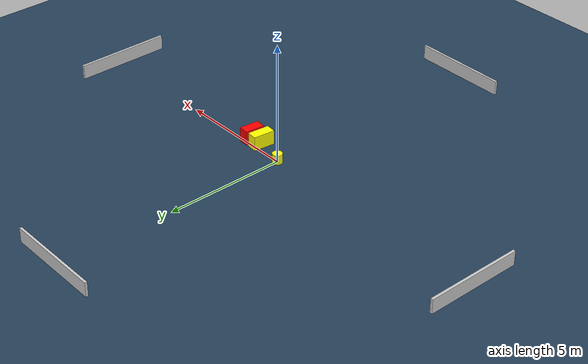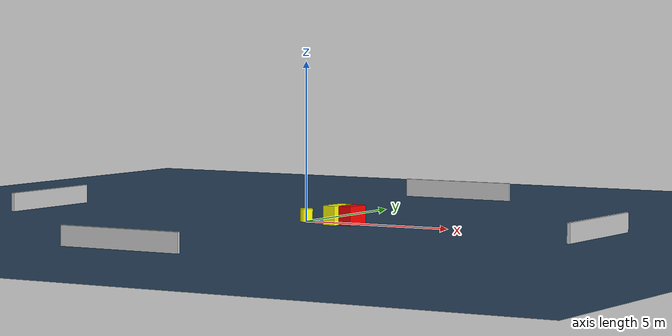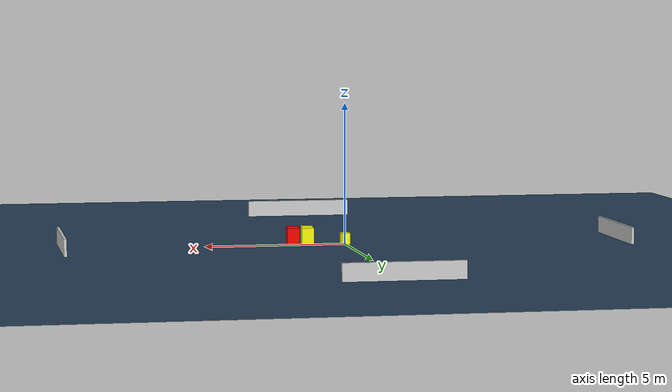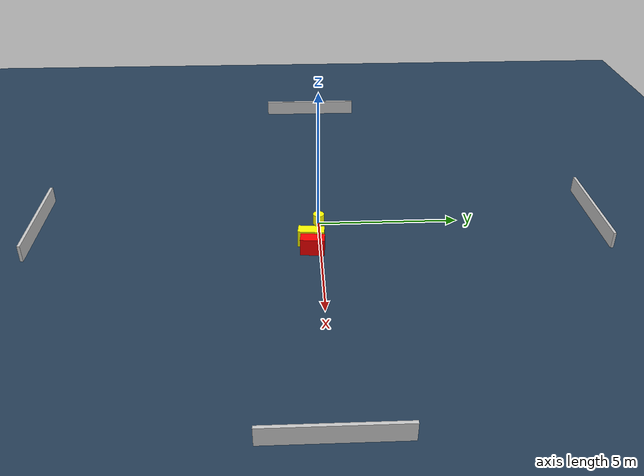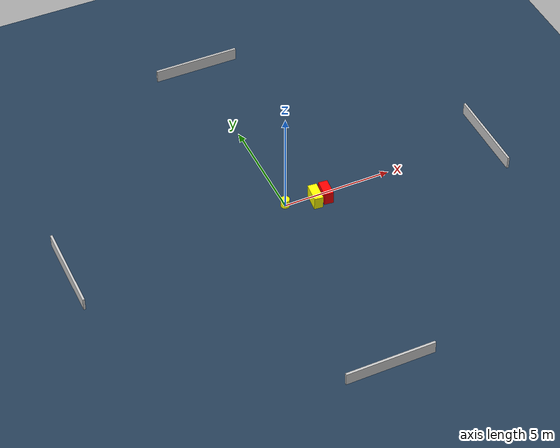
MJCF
<?xml version="1.0" ?>
<mujoco model="generated_environment">
  <option timestep="0.01" integrator="RK4" cone="elliptic"/>
  <default>
    <geom density="1"/>
  </default>
  <asset>
    <texture builtin="gradient" height="3072" name="skybox" rgb1="0.3 0.5 0.7" rgb2="0 0 0" type="skybox" width="512"/>
    <texture builtin="checker" height="300" name="groundplane" rgb1="0.2 0.3 0.4" rgb2="0.1 0.2 0.3" type="2d" width="300"/>
    <material name="groundplane" reflectance="0.2" texrepeat="5 5" texture="groundplane"/>
  </asset>
  <worldbody>
    <light dir="0 0 -1" directional="true" pos="0 0 1.5"/>
    <geom condim="3" friction="0.5 0.005 0.001" material="groundplane" name="floor" pos="0 0 0" size="0 0 0.05" type="plane"/>
    <body name="walls">
      <geom name="wall_1" condim="4" pos="-10.0 0.0 0.3" rgba="0.800000011920929 0.800000011920929 0.800000011920929 1.0" size="0.05 2.0 0.3" type="box"/>
      <geom name="wall_2" condim="4" pos="10.0 0.0 0.3" rgba="0.800000011920929 0.800000011920929 0.800000011920929 1.0" size="0.05 2.0 0.3" type="box"/>
      <geom name="wall_3" condim="4" pos="0.0 -10.0 0.3" rgba="0.800000011920929 0.800000011920929 0.800000011920929 1.0" size="2.0 0.05 0.3" type="box"/>
      <geom name="wall_4" condim="4" pos="0.0 10.0 0.3" rgba="0.800000011920929 0.800000011920929 0.800000011920929 1.0" size="2.0 0.05 0.3" type="box"/>
    </body>
    <body name="robot">
      <joint name="joint_x" type="slide" pos="0 0 0" axis="1 0 0"/>
      <joint name="joint_y" type="slide" pos="0 0 0" axis="0 1 0"/>
      <geom name="robot" type="cylinder" pos="0.0 0.0 0.2" size="0.2 0.2 0.0" mass="5.0" friction="1.0 0.005 0.0001" condim="4" rgba="1.0 1.0 0.0 1.0"/>
    </body>
    <body name="obstacle_1_movable">
      <geom name="obstacle_1_movable" condim="4" pos="1.3082717145721525 -0.3074012922842175 0.3" euler="0 0 84.09401525251417" friction="0.0 0.005 0.001" rgba="1.0 1.0 0.0 1.0" size="0.4522015411997436 0.20723633432486957 0.3" type="box" mass="0.1"/>
      <joint type="free"/>
    </body>
    <body name="obstacle_2_static">
      <geom name="obstacle_2_static" condim="4" pos="1.8258450298520492 -0.27852283569234626 0.3" euler="0 0 84.15936230150291" friction="0.0 0.005 0.001" rgba="1.0 0.0 0.0 1.0" size="0.41048165906892914 0.2109662044939413 0.3" type="box"/>
    </body>
  </worldbody>
  <actuator>
    <motor name="actuator_x" joint="joint_x" gear="1" ctrlrange="-1 1"/>
    <motor name="actuator_y" joint="joint_y" gear="1" ctrlrange="-1 1"/>
  </actuator>
</mujoco>
